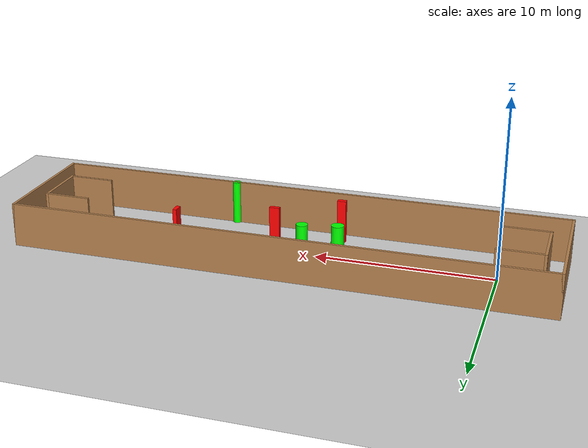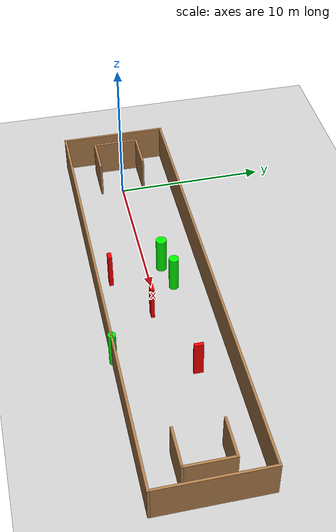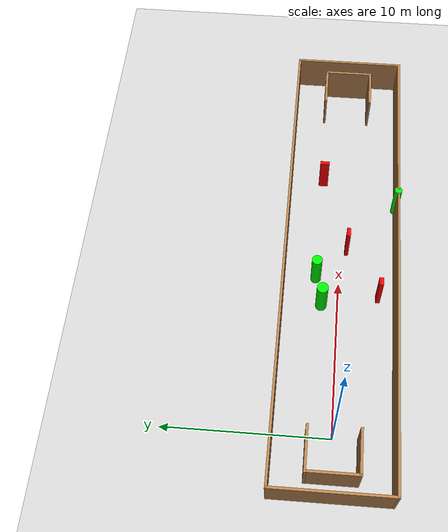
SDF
<sdf version="1.7">
 <world name="default">
  <light name="sun" type="directional">
   <pose>0 0 10 0 -0 0</pose>
   <diffuse>0.8 0.8 0.8 1</diffuse>
   <specular>0.2 0.2 0.2 1</specular>
   <attenuation>
    <range>1000</range>
    <constant>0.9</constant>
    <linear>0.01</linear>
    <quadratic>0.001</quadratic>
   </attenuation>
   <direction>-0.5 0.1 -0.9</direction>
   <spot><inner_angle>0</inner_angle><outer_angle>0</outer_angle><falloff>0</falloff></spot>
  </light>
  <model name="ground_plane">
   <static>1</static>
   <link name="link">
    <collision name="collision">
     <geometry><plane><normal>0 0 1</normal><size>100 100</size></plane></geometry>
     <surface>
      <contact><collide_bitmask>65535</collide_bitmask></contact>
      <friction><ode><mu>100</mu><mu2>50</mu2></ode></friction>
     </surface>
    </collision>
    <visual name="visual">
     <cast_shadows>0</cast_shadows>
     <geometry><plane><normal>0 0 1</normal><size>100 100</size></plane></geometry>
     <material>
      <script><uri>file://media/materials/scripts/gazebo.material</uri><name>Gazebo/Grey</name></script>
     </material>
    </visual>
   </link>
  </model>
  <gravity>0 0 -9.8</gravity>
  <magnetic_field>6e-06 2.3e-05 -4.2e-05</magnetic_field>
  <atmosphere type="adiabatic"/>
  <physics type="ode">
   <max_step_size>0.001</max_step_size>
   <real_time_factor>1</real_time_factor>
   <real_time_update_rate>1000</real_time_update_rate>
  </physics>
  <scene><ambient>0.4 0.4 0.4 1</ambient><background>0.7 0.7 0.7 1</background><shadows>1</shadows></scene>
  <spherical_coordinates>
   <surface_model>EARTH_WGS84</surface_model>
   <latitude_deg>0</latitude_deg>
   <longitude_deg>0</longitude_deg>
   <elevation>0</elevation>
   <heading_deg>0</heading_deg>
  </spherical_coordinates>
  <model name="my_base_walls">
   <link name="Wall_0">
    <collision name="Wall_0_Collision">
     <geometry><box><size>7.15 0.15 2.5</size></box></geometry>
     <pose>0 0 1.25 0 -0 0</pose>
    </collision>
    <visual name="Wall_0_Visual">
     <pose>0 0 1.25 0 -0 0</pose>
     <geometry><box><size>7.15 0.15 2.5</size></box></geometry>
     <material>
      <script><uri>file://media/materials/scripts/gazebo.material</uri><name>Gazebo/Wood</name></script>
      <ambient>1 1 1 1</ambient>
     </material>
     <meta><layer>0</layer></meta>
    </visual>
    <pose>-15 0 0 0 -0 1.5708</pose>
   </link>
   <link name="Wall_10">
    <collision name="Wall_10_Collision">
     <geometry><box><size>2.65 0.15 2.5</size></box></geometry>
     <pose>0 0 1.25 0 -0 0</pose>
    </collision>
    <visual name="Wall_10_Visual">
     <pose>0 0 1.25 0 -0 0</pose>
     <geometry><box><size>2.65 0.15 2.5</size></box></geometry>
     <material>
      <script><uri>file://media/materials/scripts/gazebo.material</uri><name>Gazebo/Wood</name></script>
      <ambient>1 1 1 1</ambient>
     </material>
     <meta><layer>0</layer></meta>
    </visual>
    <pose>-12.75 -1.5 0 0 -0 0</pose>
   </link>
   <link name="Wall_12">
    <collision name="Wall_12_Collision">
     <geometry><box><size>2.65 0.15 2.5</size></box></geometry>
     <pose>0 0 1.25 0 -0 0</pose>
    </collision>
    <visual name="Wall_12_Visual">
     <pose>0 0 1.25 0 -0 0</pose>
     <geometry><box><size>2.65 0.15 2.5</size></box></geometry>
     <material>
      <script><uri>file://media/materials/scripts/gazebo.material</uri><name>Gazebo/Wood</name></script>
      <ambient>1 1 1 1</ambient>
     </material>
     <meta><layer>0</layer></meta>
    </visual>
    <pose>-12.75 1.5 0 0 -0 0</pose>
   </link>
   <link name="Wall_14">
    <collision name="Wall_14_Collision">
     <geometry><box><size>3.15 0.15 2.5</size></box></geometry>
     <pose>0 0 1.25 0 -0 0</pose>
    </collision>
    <visual name="Wall_14_Visual">
     <pose>0 0 1.25 0 -0 0</pose>
     <geometry><box><size>3.15 0.15 2.5</size></box></geometry>
     <material>
      <script><uri>file://media/materials/scripts/gazebo.material</uri><name>Gazebo/Wood</name></script>
      <ambient>1 1 1 1</ambient>
     </material>
     <meta><layer>0</layer></meta>
    </visual>
    <pose>14 0 0 0 -0 -1.5708</pose>
   </link>
   <link name="Wall_15">
    <collision name="Wall_15_Collision">
     <geometry><box><size>2.65 0.15 2.5</size></box></geometry>
     <pose>0 0 1.25 0 -0 0</pose>
    </collision>
    <visual name="Wall_15_Visual">
     <pose>0 0 1.25 0 -0 0</pose>
     <geometry><box><size>2.65 0.15 2.5</size></box></geometry>
     <material>
      <script><uri>file://media/materials/scripts/gazebo.material</uri><name>Gazebo/Wood</name></script>
      <ambient>1 1 1 1</ambient>
     </material>
     <meta><layer>0</layer></meta>
    </visual>
    <pose>12.75 -1.5 0 0 -0 3.14159</pose>
   </link>
   <link name="Wall_17">
    <collision name="Wall_17_Collision">
     <geometry><box><size>2.65 0.15 2.5</size></box></geometry>
     <pose>0 0 1.25 0 -0 0</pose>
    </collision>
    <visual name="Wall_17_Visual">
     <pose>0 0 1.25 0 -0 0</pose>
     <geometry><box><size>2.65 0.15 2.5</size></box></geometry>
     <material>
      <script><uri>file://media/materials/scripts/gazebo.material</uri><name>Gazebo/Wood</name></script>
      <ambient>1 1 1 1</ambient>
     </material>
     <meta><layer>0</layer></meta>
    </visual>
    <pose>12.75 1.5 0 0 -0 3.14159</pose>
   </link>
   <link name="Wall_2">
    <collision name="Wall_2_Collision">
     <geometry><box><size>30.15 0.15 2.5</size></box></geometry>
     <pose>0 0 1.25 0 -0 0</pose>
    </collision>
    <visual name="Wall_2_Visual">
     <pose>0 0 1.25 0 -0 0</pose>
     <geometry><box><size>30.15 0.15 2.5</size></box></geometry>
     <material>
      <script><uri>file://media/materials/scripts/gazebo.material</uri><name>Gazebo/Wood</name></script>
      <ambient>1 1 1 1</ambient>
     </material>
     <meta><layer>0</layer></meta>
    </visual>
    <pose>-0 -3.5 0 0 -0 0</pose>
   </link>
   <link name="Wall_4">
    <collision name="Wall_4_Collision">
     <geometry><box><size>30.15 0.15 2.5</size></box></geometry>
     <pose>0 0 1.25 0 -0 0</pose>
    </collision>
    <visual name="Wall_4_Visual">
     <pose>0 0 1.25 0 -0 0</pose>
     <geometry><box><size>30.15 0.15 2.5</size></box></geometry>
     <material>
      <script><uri>file://media/materials/scripts/gazebo.material</uri><name>Gazebo/Wood</name></script>
      <ambient>1 1 1 1</ambient>
     </material>
     <meta><layer>0</layer></meta>
    </visual>
    <pose>-0 3.5 0 0 -0 0</pose>
   </link>
   <link name="Wall_6">
    <collision name="Wall_6_Collision">
     <geometry><box><size>7.15 0.15 2.5</size></box></geometry>
     <pose>0 0 1.25 0 -0 0</pose>
    </collision>
    <visual name="Wall_6_Visual">
     <pose>0 0 1.25 0 -0 0</pose>
     <geometry><box><size>7.15 0.15 2.5</size></box></geometry>
     <material>
      <script><uri>file://media/materials/scripts/gazebo.material</uri><name>Gazebo/Wood</name></script>
      <ambient>1 1 1 1</ambient>
     </material>
     <meta><layer>0</layer></meta>
    </visual>
    <pose>15 0 0 0 -0 -1.5708</pose>
   </link>
   <link name="Wall_9">
    <collision name="Wall_9_Collision">
     <geometry><box><size>3.15 0.15 2.5</size></box></geometry>
     <pose>0 0 1.25 0 -0 0</pose>
    </collision>
    <visual name="Wall_9_Visual">
     <pose>0 0 1.25 0 -0 0</pose>
     <geometry><box><size>3.15 0.15 2.5</size></box></geometry>
     <material>
      <script><uri>file://media/materials/scripts/gazebo.material</uri><name>Gazebo/Wood</name></script>
      <ambient>1 1 1 1</ambient>
     </material>
     <meta><layer>0</layer></meta>
    </visual>
    <pose>-14 0 0 0 -0 -1.5708</pose>
   </link>
   <static>1</static>
   <pose>11.5 0 0 0 -0 0</pose>
  </model>
  <model name="cylinder1">
   <static>1</static>
   <link name="link">
    <inertial>
     <mass>1</mass>
     <inertia><ixx>0.5</ixx><ixy>0</ixy><ixz>0</ixz><iyy>0.5</iyy><iyz>0</iyz><izz>1</izz></inertia>
    </inertial>
    <collision name="collision">
     <geometry><cylinder><radius>0.23941599006551018</radius><length>2.5</length></cylinder></geometry>
    </collision>
    <visual name="visual">
     <geometry><cylinder><radius>0.23941599006551018</radius><length>2.5</length></cylinder></geometry>
     <material>
      <ambient>0 1 0 1</ambient>
      <diffuse>0 1 0 1</diffuse>
      <specular>0.1 0.1 0.1 1</specular>
      <emissive>0 0 0 0</emissive>
     </material>
    </visual>
   </link>
   <pose>15.78817508602593 -3.477475752223749 1.25 0 0 0</pose>
  </model>
  <model name="cylinder2">
   <static>1</static>
   <link name="link">
    <inertial>
     <mass>1</mass>
     <inertia><ixx>0.5</ixx><ixy>0</ixy><ixz>0</ixz><iyy>0.5</iyy><iyz>0</iyz><izz>1</izz></inertia>
    </inertial>
    <collision name="collision">
     <geometry><cylinder><radius>0.3196098552771588</radius><length>2.5</length></cylinder></geometry>
    </collision>
    <visual name="visual">
     <geometry><cylinder><radius>0.3196098552771588</radius><length>2.5</length></cylinder></geometry>
     <material>
      <ambient>0 1 0 1</ambient>
      <diffuse>0 1 0 1</diffuse>
      <specular>0.1 0.1 0.1 1</specular>
      <emissive>0 0 0 0</emissive>
     </material>
    </visual>
   </link>
   <pose>10.307419821349022 1.4698585398344406 1.25 0 0 0</pose>
  </model>
  <model name="cylinder3">
   <static>1</static>
   <link name="link">
    <inertial>
     <mass>1</mass>
     <inertia><ixx>0.5</ixx><ixy>0</ixy><ixz>0</ixz><iyy>0.5</iyy><iyz>0</iyz><izz>1</izz></inertia>
    </inertial>
    <collision name="collision">
     <geometry><cylinder><radius>0.34944935579092806</radius><length>2.5</length></cylinder></geometry>
    </collision>
    <visual name="visual">
     <geometry><cylinder><radius>0.34944935579092806</radius><length>2.5</length></cylinder></geometry>
     <material>
      <ambient>0 1 0 1</ambient>
      <diffuse>0 1 0 1</diffuse>
      <specular>0.1 0.1 0.1 1</specular>
      <emissive>0 0 0 0</emissive>
     </material>
    </visual>
   </link>
   <pose>8.440372657885128 1.0469862560038052 1.25 0 0 0</pose>
  </model>
  <model name="box1">
   <static>1</static>
   <link name="link">
    <inertial>
     <mass>1</mass>
     <inertia><ixx>0.083</ixx><ixy>0</ixy><ixz>0</ixz><iyy>0.083</iyy><iyz>0</iyz><izz>0.083</izz></inertia>
    </inertial>
    <collision name="collision">
     <geometry><box><size>0.49891127373186095 0.2653707697229361 2.5</size></box></geometry>
    </collision>
    <visual name="visual">
     <geometry><box><size>0.49891127373186095 0.2653707697229361 2.5</size></box></geometry>
     <material>
      <ambient>1 0 0 1</ambient>
      <diffuse>1 0 0 1</diffuse>
      <specular>0.1 0.1 0.1 1</specular>
      <emissive>0 0 0 0</emissive>
     </material>
    </visual>
    <sensor name="my_contact" type="contact">
     <contact><collision>box_collision</collision><topic>__default_topic__</topic></contact>
    </sensor>
   </link>
   <pose>9.127124535420515 -2.4643258422361307 1.25 0 0 0</pose>
  </model>
  <model name="box2">
   <static>1</static>
   <link name="link">
    <inertial>
     <mass>1</mass>
     <inertia><ixx>0.083</ixx><ixy>0</ixy><ixz>0</ixz><iyy>0.083</iyy><iyz>0</iyz><izz>0.083</izz></inertia>
    </inertial>
    <collision name="collision">
     <geometry><box><size>0.580550066344045 0.22638362885405652 2.5</size></box></geometry>
    </collision>
    <visual name="visual">
     <geometry><box><size>0.580550066344045 0.22638362885405652 2.5</size></box></geometry>
     <material>
      <ambient>1 0 0 1</ambient>
      <diffuse>1 0 0 1</diffuse>
      <specular>0.1 0.1 0.1 1</specular>
      <emissive>0 0 0 0</emissive>
     </material>
    </visual>
    <sensor name="my_contact" type="contact">
     <contact><collision>box_collision</collision><topic>__default_topic__</topic></contact>
    </sensor>
   </link>
   <pose>12.436616894692687 -0.40457579141938194 1.25 0 0 0</pose>
  </model>
  <model name="box3">
   <static>1</static>
   <link name="link">
    <inertial>
     <mass>1</mass>
     <inertia><ixx>0.083</ixx><ixy>0</ixy><ixz>0</ixz><iyy>0.083</iyy><iyz>0</iyz><izz>0.083</izz></inertia>
    </inertial>
    <collision name="collision">
     <geometry><box><size>0.2248067225376157 0.5913709289169793 2.5</size></box></geometry>
    </collision>
    <visual name="visual">
     <geometry><box><size>0.2248067225376157 0.5913709289169793 2.5</size></box></geometry>
     <material>
      <ambient>1 0 0 1</ambient>
      <diffuse>1 0 0 1</diffuse>
      <specular>0.1 0.1 0.1 1</specular>
      <emissive>0 0 0 0</emissive>
     </material>
    </visual>
    <sensor name="my_contact" type="contact">
     <contact><collision>box_collision</collision><topic>__default_topic__</topic></contact>
    </sensor>
   </link>
   <pose>17.6020042275701 1.3270825114461253 1.25 0 0 0</pose>
  </model>
 </world>
</sdf>
